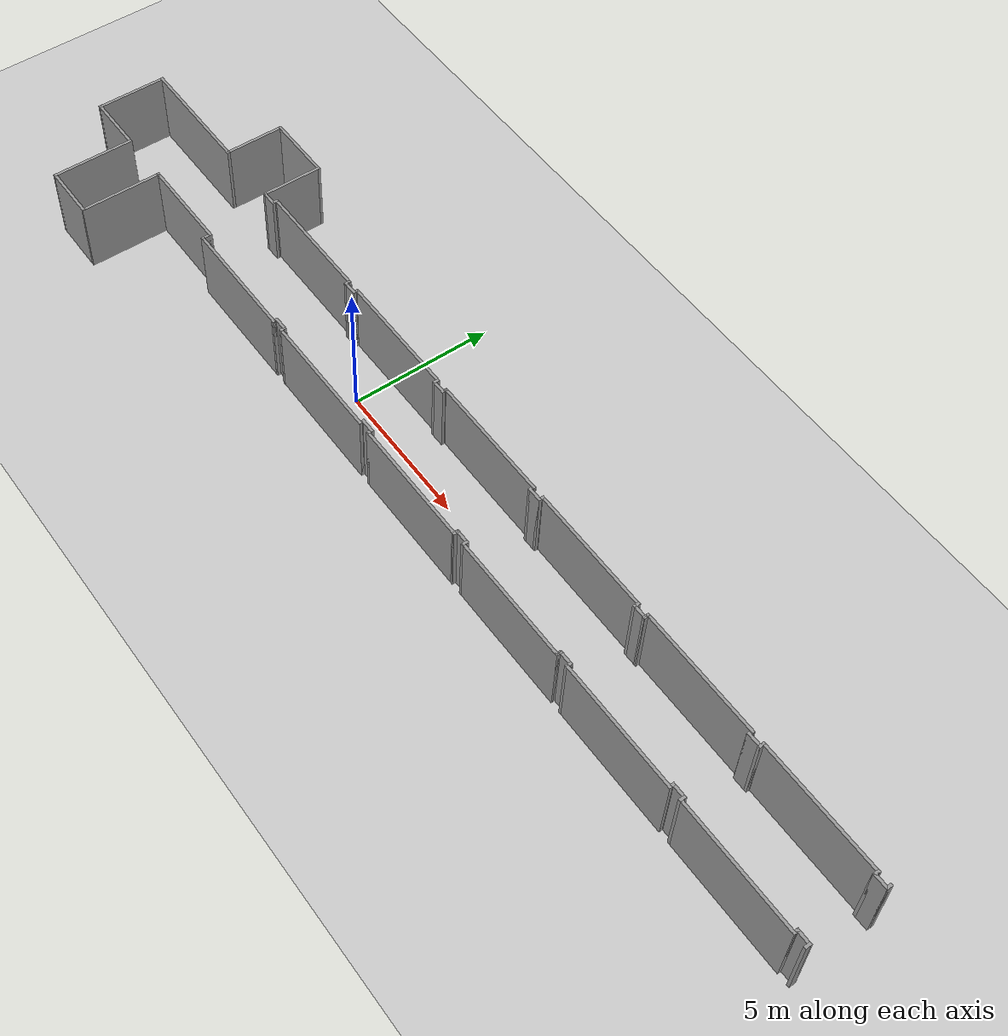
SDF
<?xml version="1.0" ?>
<sdf version="1.5">
 <world name="default">

    <scene>
      <ambient>0.4 0.4 0.4 1</ambient>
      <background>0.7 0.7 0.7 1</background>
      <shadows>1</shadows>
    </scene>

    <!-- A global light source -->
    <include>
      <uri>model://sun</uri>
    </include>
    <!-- A ground plane -->
    <include>
      <uri>model://ground_plane</uri>
    </include>

    <include>
      <uri>model://EE_Build</uri>
      <pose frame=''>0 0 0 0 0 3.14</pose>
    </include>

    <physics type="ode">
      <real_time_update_rate>1000.0</real_time_update_rate>
      <max_step_size>0.001</max_step_size>
      <real_time_factor>1</real_time_factor>
      <ode>
        <solver>
          <type>quick</type>
          <iters>150</iters>
          <precon_iters>0</precon_iters>
          <sor>1.400000</sor>
          <use_dynamic_moi_rescaling>1</use_dynamic_moi_rescaling>
        </solver>
        <constraints>
          <cfm>0.00001</cfm>
          <erp>0.2</erp>
          <contact_max_correcting_vel>2000.000000</contact_max_correcting_vel>
          <contact_surface_layer>0.01000</contact_surface_layer>
        </constraints>
      </ode>
    </physics>

 </world>
</sdf>

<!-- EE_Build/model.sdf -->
<sdf version='1.6'>
  <model name='EE_Build'>
    <model name='EE_Build'>
      <pose frame=''>5.45213 0.31107 0 0 -0 0</pose>
      <link name='Wall_246'>
        <collision name='Wall_246_Collision'>
          <geometry>
            <box>
              <size>4.32 0.1 2.6</size>
            </box>
          </geometry>
          <pose frame=''>0 0 1.3 0 -0 0</pose>
        </collision>
        <visual name='Wall_246_Visual'>
          <pose frame=''>0 0 1.3 0 -0 0</pose>
          <geometry>
            <box>
              <size>4.32 0.1 2.6</size>
            </box>
          </geometry>
          <material>
            <script>
              <uri>file://media/materials/scripts/gazebo.material</uri>
              <name>Gazebo/Grey</name>
            </script>
            <ambient>1 1 1 1</ambient>
          </material>
        </visual>
        <pose frame=''>-0.960228 1.09491 0 0 -0 0</pose>
      </link>
      <link name='Wall_248'>
        <collision name='Wall_248_Collision'>
          <geometry>
            <box>
              <size>0.37 0.1 2.6</size>
            </box>
          </geometry>
          <pose frame=''>0 0 1.3 0 -0 0</pose>
        </collision>
        <visual name='Wall_248_Visual'>
          <pose frame=''>0 0 1.3 0 -0 0</pose>
          <geometry>
            <box>
              <size>0.37 0.1 2.6</size>
            </box>
          </geometry>
          <material>
            <script>
              <uri>file://media/materials/scripts/gazebo.material</uri>
              <name>Gazebo/Grey</name>
            </script>
            <ambient>1 1 1 1</ambient>
          </material>
        </visual>
        <pose frame=''>1.14977 0.959909 0 0 0 -1.5708</pose>
      </link>
      <link name='Wall_250'>
        <collision name='Wall_250_Collision'>
          <geometry>
            <box>
              <size>3.38 0.1 2.6</size>
            </box>
          </geometry>
          <pose frame=''>0 0 1.3 0 -0 0</pose>
        </collision>
        <visual name='Wall_250_Visual'>
          <pose frame=''>0 0 1.3 0 -0 0</pose>
          <geometry>
            <box>
              <size>3.38 0.1 2.6</size>
            </box>
          </geometry>
          <material>
            <script>
              <uri>file://media/materials/scripts/gazebo.material</uri>
              <name>Gazebo/Grey</name>
            </script>
            <ambient>1 1 1 1</ambient>
          </material>
        </visual>
        <pose frame=''>2.78977 0.824909 0 0 -0 0</pose>
      </link>
      <link name='Wall_253'>
        <collision name='Wall_253_Collision'>
          <geometry>
            <box>
              <size>0.22 0.1 2.6</size>
            </box>
          </geometry>
          <pose frame=''>0 0 1.3 0 -0 0</pose>
        </collision>
        <visual name='Wall_253_Visual'>
          <pose frame=''>0 0 1.3 0 -0 0</pose>
          <geometry>
            <box>
              <size>0.22 0.1 2.6</size>
            </box>
          </geometry>
          <material>
            <script>
              <uri>file://media/materials/scripts/gazebo.material</uri>
              <name>Gazebo/Grey</name>
            </script>
            <ambient>1 1 1 1</ambient>
          </material>
        </visual>
        <pose frame=''>-3.07023 1.03491 0 0 0 -1.5708</pose>
      </link>
      <link name='Wall_262'>
        <collision name='Wall_262_Collision'>
          <geometry>
            <box>
              <size>0.54 0.1 2.6</size>
            </box>
          </geometry>
          <pose frame=''>0 0 1.3 0 -0 0</pose>
        </collision>
        <visual name='Wall_262_Visual'>
          <pose frame=''>0 0 1.3 0 -0 0</pose>
          <geometry>
            <box>
              <size>0.54 0.1 2.6</size>
            </box>
          </geometry>
          <material>
            <script>
              <uri>file://media/materials/scripts/gazebo.material</uri>
              <name>Gazebo/Grey</name>
            </script>
            <ambient>1 1 1 1</ambient>
          </material>
        </visual>
        <pose frame=''>-3.29023 0.974909 0 0 -0 3.14159</pose>
      </link>
      <link name='Wall_270'>
        <collision name='Wall_270_Collision'>
          <geometry>
            <box>
              <size>0.22 0.1 2.6</size>
            </box>
          </geometry>
          <pose frame=''>0 0 1.3 0 -0 0</pose>
        </collision>
        <visual name='Wall_270_Visual'>
          <pose frame=''>0 0 1.3 0 -0 0</pose>
          <geometry>
            <box>
              <size>0.22 0.1 2.6</size>
            </box>
          </geometry>
          <material>
            <script>
              <uri>file://media/materials/scripts/gazebo.material</uri>
              <name>Gazebo/Grey</name>
            </script>
            <ambient>1 1 1 1</ambient>
          </material>
        </visual>
        <pose frame=''>-3.51023 1.03491 0 0 -0 1.5708</pose>
      </link>
      <link name='Wall_272'>
        <collision name='Wall_272_Collision'>
          <geometry>
            <box>
              <size>4.46 0.1 2.6</size>
            </box>
          </geometry>
          <pose frame=''>0 0 1.3 0 -0 0</pose>
        </collision>
        <visual name='Wall_272_Visual'>
          <pose frame=''>0 0 1.3 0 -0 0</pose>
          <geometry>
            <box>
              <size>4.46 0.1 2.6</size>
            </box>
          </geometry>
          <material>
            <script>
              <uri>file://media/materials/scripts/gazebo.material</uri>
              <name>Gazebo/Grey</name>
            </script>
            <ambient>1 1 1 1</ambient>
          </material>
        </visual>
        <pose frame=''>-5.69023 1.09491 0 0 -0 3.14159</pose>
      </link>
      <link name='Wall_274'>
        <collision name='Wall_274_Collision'>
          <geometry>
            <box>
              <size>0.22 0.1 2.6</size>
            </box>
          </geometry>
          <pose frame=''>0 0 1.3 0 -0 0</pose>
        </collision>
        <visual name='Wall_274_Visual'>
          <pose frame=''>0 0 1.3 0 -0 0</pose>
          <geometry>
            <box>
              <size>0.22 0.1 2.6</size>
            </box>
          </geometry>
          <material>
            <script>
              <uri>file://media/materials/scripts/gazebo.material</uri>
              <name>Gazebo/Grey</name>
            </script>
            <ambient>1 1 1 1</ambient>
          </material>
        </visual>
        <pose frame=''>-7.87023 1.03491 0 0 0 -1.5708</pose>
      </link>
      <link name='Wall_276'>
        <collision name='Wall_276_Collision'>
          <geometry>
            <box>
              <size>2.9 0.1 2.6</size>
            </box>
          </geometry>
          <pose frame=''>0 0 1.3 0 -0 0</pose>
        </collision>
        <visual name='Wall_276_Visual'>
          <pose frame=''>0 0 1.3 0 -0 0</pose>
          <geometry>
            <box>
              <size>2.9 0.1 2.6</size>
            </box>
          </geometry>
          <material>
            <script>
              <uri>file://media/materials/scripts/gazebo.material</uri>
              <name>Gazebo/Grey</name>
            </script>
            <ambient>1 1 1 1</ambient>
          </material>
        </visual>
        <pose frame=''>4.42977 2.22491 0 0 -0 1.5708</pose>
      </link>
      <link name='Wall_278'>
        <collision name='Wall_278_Collision'>
          <geometry>
            <box>
              <size>1.98 0.1 2.6</size>
            </box>
          </geometry>
          <pose frame=''>0 0 1.3 0 -0 0</pose>
        </collision>
        <visual name='Wall_278_Visual'>
          <pose frame=''>0 0 1.3 0 -0 0</pose>
          <geometry>
            <box>
              <size>1.98 0.1 2.6</size>
            </box>
          </geometry>
          <material>
            <script>
              <uri>file://media/materials/scripts/gazebo.material</uri>
              <name>Gazebo/Grey</name>
            </script>
            <ambient>1 1 1 1</ambient>
          </material>
        </visual>
        <pose frame=''>5.36977 3.62491 0 0 -0 0</pose>
      </link>
      <link name='Wall_280'>
        <collision name='Wall_280_Collision'>
          <geometry>
            <box>
              <size>2.9 0.1 2.6</size>
            </box>
          </geometry>
          <pose frame=''>0 0 1.3 0 -0 0</pose>
        </collision>
        <visual name='Wall_280_Visual'>
          <pose frame=''>0 0 1.3 0 -0 0</pose>
          <geometry>
            <box>
              <size>2.9 0.1 2.6</size>
            </box>
          </geometry>
          <material>
            <script>
              <uri>file://media/materials/scripts/gazebo.material</uri>
              <name>Gazebo/Grey</name>
            </script>
            <ambient>1 1 1 1</ambient>
          </material>
        </visual>
        <pose frame=''>6.30977 2.22491 0 0 0 -1.5708</pose>
      </link>
      <link name='Wall_282'>
        <collision name='Wall_282_Collision'>
          <geometry>
            <box>
              <size>2.1 0.1 2.6</size>
            </box>
          </geometry>
          <pose frame=''>0 0 1.3 0 -0 0</pose>
        </collision>
        <visual name='Wall_282_Visual'>
          <pose frame=''>0 0 1.3 0 -0 0</pose>
          <geometry>
            <box>
              <size>2.1 0.1 2.6</size>
            </box>
          </geometry>
          <material>
            <script>
              <uri>file://media/materials/scripts/gazebo.material</uri>
              <name>Gazebo/Grey</name>
            </script>
            <ambient>1 1 1 1</ambient>
          </material>
        </visual>
        <pose frame=''>7.31 0.825 0 0 -0 9.1e-05</pose>
      </link>
      <link name='Wall_284'>
        <collision name='Wall_284_Collision'>
          <geometry>
            <box>
              <size>2.5 0.1 2.6</size>
            </box>
          </geometry>
          <pose frame=''>0 0 1.3 0 -0 0</pose>
        </collision>
        <visual name='Wall_284_Visual'>
          <pose frame=''>0 0 1.3 0 -0 0</pose>
          <geometry>
            <box>
              <size>2.5 0.1 2.6</size>
            </box>
          </geometry>
          <material>
            <script>
              <uri>file://media/materials/scripts/gazebo.material</uri>
              <name>Gazebo/Grey</name>
            </script>
            <ambient>1 1 1 1</ambient>
          </material>
        </visual>
        <pose frame=''>8.31023 -0.374909 0 0 0 -1.5708</pose>
      </link>
      <link name='Wall_286'>
        <collision name='Wall_286_Collision'>
          <geometry>
            <box>
              <size>4.42 0.1 2.6</size>
            </box>
          </geometry>
          <pose frame=''>0 0 1.3 0 -0 0</pose>
        </collision>
        <visual name='Wall_286_Visual'>
          <pose frame=''>0 0 1.3 0 -0 0</pose>
          <geometry>
            <box>
              <size>4.42 0.1 2.6</size>
            </box>
          </geometry>
          <material>
            <script>
              <uri>file://media/materials/scripts/gazebo.material</uri>
              <name>Gazebo/Grey</name>
            </script>
            <ambient>1 1 1 1</ambient>
          </material>
        </visual>
        <pose frame=''>6.15023 -1.57491 0 0 -0 3.14159</pose>
      </link>
      <link name='Wall_288'>
        <collision name='Wall_288_Collision'>
          <geometry>
            <box>
              <size>2.15 0.1 2.6</size>
            </box>
          </geometry>
          <pose frame=''>0 0 1.3 0 -0 0</pose>
        </collision>
        <visual name='Wall_288_Visual'>
          <pose frame=''>0 0 1.3 0 -0 0</pose>
          <geometry>
            <box>
              <size>2.15 0.1 2.6</size>
            </box>
          </geometry>
          <material>
            <script>
              <uri>file://media/materials/scripts/gazebo.material</uri>
              <name>Gazebo/Grey</name>
            </script>
            <ambient>1 1 1 1</ambient>
          </material>
        </visual>
        <pose frame=''>3.99023 -2.59991 0 0 0 -1.5708</pose>
      </link>
      <link name='Wall_290'>
        <collision name='Wall_290_Collision'>
          <geometry>
            <box>
              <size>2.42 0.1 2.6</size>
            </box>
          </geometry>
          <pose frame=''>0 0 1.3 0 -0 0</pose>
        </collision>
        <visual name='Wall_290_Visual'>
          <pose frame=''>0 0 1.3 0 -0 0</pose>
          <geometry>
            <box>
              <size>2.42 0.1 2.6</size>
            </box>
          </geometry>
          <material>
            <script>
              <uri>file://media/materials/scripts/gazebo.material</uri>
              <name>Gazebo/Grey</name>
            </script>
            <ambient>1 1 1 1</ambient>
          </material>
        </visual>
        <pose frame=''>2.83023 -3.62491 0 0 -0 3.14159</pose>
      </link>
      <link name='Wall_294'>
        <collision name='Wall_294_Collision'>
          <geometry>
            <box>
              <size>2.15 0.1 2.6</size>
            </box>
          </geometry>
          <pose frame=''>0 0 1.3 0 -0 0</pose>
        </collision>
        <visual name='Wall_294_Visual'>
          <pose frame=''>0 0 1.3 0 -0 0</pose>
          <geometry>
            <box>
              <size>2.15 0.1 2.6</size>
            </box>
          </geometry>
          <material>
            <script>
              <uri>file://media/materials/scripts/gazebo.material</uri>
              <name>Gazebo/Grey</name>
            </script>
            <ambient>1 1 1 1</ambient>
          </material>
        </visual>
        <pose frame=''>1.67023 -2.59991 0 0 -0 1.5708</pose>
      </link>
      <link name='Wall_296'>
        <collision name='Wall_296_Collision'>
          <geometry>
            <box>
              <size>0.58 0.1 2.6</size>
            </box>
          </geometry>
          <pose frame=''>0 0 1.3 0 -0 0</pose>
        </collision>
        <visual name='Wall_296_Visual'>
          <pose frame=''>0 0 1.3 0 -0 0</pose>
          <geometry>
            <box>
              <size>0.58 0.1 2.6</size>
            </box>
          </geometry>
          <material>
            <script>
              <uri>file://media/materials/scripts/gazebo.material</uri>
              <name>Gazebo/Grey</name>
            </script>
            <ambient>1 1 1 1</ambient>
          </material>
        </visual>
        <pose frame=''>1.43023 -1.57491 0 0 -0 3.14159</pose>
      </link>
      <link name='Wall_298'>
        <collision name='Wall_298_Collision'>
          <geometry>
            <box>
              <size>0.24 0.1 2.6</size>
            </box>
          </geometry>
          <pose frame=''>0 0 1.3 0 -0 0</pose>
        </collision>
        <visual name='Wall_298_Visual'>
          <pose frame=''>0 0 1.3 0 -0 0</pose>
          <geometry>
            <box>
              <size>0.24 0.1 2.6</size>
            </box>
          </geometry>
          <material>
            <script>
              <uri>file://media/materials/scripts/gazebo.material</uri>
              <name>Gazebo/Grey</name>
            </script>
            <ambient>1 1 1 1</ambient>
          </material>
        </visual>
        <pose frame=''>1.19023 -1.64491 0 0 0 -1.5708</pose>
      </link>
      <link name='Wall_300'>
        <collision name='Wall_300_Collision'>
          <geometry>
            <box>
              <size>4.36 0.1 2.6</size>
            </box>
          </geometry>
          <pose frame=''>0 0 1.3 0 -0 0</pose>
        </collision>
        <visual name='Wall_300_Visual'>
          <pose frame=''>0 0 1.3 0 -0 0</pose>
          <geometry>
            <box>
              <size>4.36 0.1 2.6</size>
            </box>
          </geometry>
          <material>
            <script>
              <uri>file://media/materials/scripts/gazebo.material</uri>
              <name>Gazebo/Grey</name>
            </script>
            <ambient>1 1 1 1</ambient>
          </material>
        </visual>
        <pose frame=''>-0.939771 -1.71491 0 0 -0 3.14159</pose>
      </link>
      <link name='Wall_302'>
        <collision name='Wall_302_Collision'>
          <geometry>
            <box>
              <size>0.22 0.1 2.6</size>
            </box>
          </geometry>
          <pose frame=''>0 0 1.3 0 -0 0</pose>
        </collision>
        <visual name='Wall_302_Visual'>
          <pose frame=''>0 0 1.3 0 -0 0</pose>
          <geometry>
            <box>
              <size>0.22 0.1 2.6</size>
            </box>
          </geometry>
          <material>
            <script>
              <uri>file://media/materials/scripts/gazebo.material</uri>
              <name>Gazebo/Grey</name>
            </script>
            <ambient>1 1 1 1</ambient>
          </material>
        </visual>
        <pose frame=''>-3.06977 -1.65491 0 0 -0 1.5708</pose>
      </link>
      <link name='Wall_308'>
        <collision name='Wall_308_Collision'>
          <geometry>
            <box>
              <size>0.54 0.1 2.6</size>
            </box>
          </geometry>
          <pose frame=''>0 0 1.3 0 -0 0</pose>
        </collision>
        <visual name='Wall_308_Visual'>
          <pose frame=''>0 0 1.3 0 -0 0</pose>
          <geometry>
            <box>
              <size>0.54 0.1 2.6</size>
            </box>
          </geometry>
          <material>
            <script>
              <uri>file://media/materials/scripts/gazebo.material</uri>
              <name>Gazebo/Grey</name>
            </script>
            <ambient>1 1 1 1</ambient>
          </material>
        </visual>
        <pose frame=''>-3.28977 -1.59491 0 0 -0 3.14159</pose>
      </link>
      <link name='Wall_310'>
        <collision name='Wall_310_Collision'>
          <geometry>
            <box>
              <size>0.22 0.1 2.6</size>
            </box>
          </geometry>
          <pose frame=''>0 0 1.3 0 -0 0</pose>
        </collision>
        <visual name='Wall_310_Visual'>
          <pose frame=''>0 0 1.3 0 -0 0</pose>
          <geometry>
            <box>
              <size>0.22 0.1 2.6</size>
            </box>
          </geometry>
          <material>
            <script>
              <uri>file://media/materials/scripts/gazebo.material</uri>
              <name>Gazebo/Grey</name>
            </script>
            <ambient>1 1 1 1</ambient>
          </material>
        </visual>
        <pose frame=''>-3.50977 -1.65491 0 0 0 -1.5708</pose>
      </link>
      <link name='Wall_312'>
        <collision name='Wall_312_Collision'>
          <geometry>
            <box>
              <size>4.46 0.1 2.6</size>
            </box>
          </geometry>
          <pose frame=''>0 0 1.3 0 -0 0</pose>
        </collision>
        <visual name='Wall_312_Visual'>
          <pose frame=''>0 0 1.3 0 -0 0</pose>
          <geometry>
            <box>
              <size>4.46 0.1 2.6</size>
            </box>
          </geometry>
          <material>
            <script>
              <uri>file://media/materials/scripts/gazebo.material</uri>
              <name>Gazebo/Grey</name>
            </script>
            <ambient>1 1 1 1</ambient>
          </material>
        </visual>
        <pose frame=''>-5.68977 -1.71491 0 0 -0 3.14159</pose>
      </link>
      <link name='Wall_314'>
        <collision name='Wall_314_Collision'>
          <geometry>
            <box>
              <size>0.22 0.1 2.6</size>
            </box>
          </geometry>
          <pose frame=''>0 0 1.3 0 -0 0</pose>
        </collision>
        <visual name='Wall_314_Visual'>
          <pose frame=''>0 0 1.3 0 -0 0</pose>
          <geometry>
            <box>
              <size>0.22 0.1 2.6</size>
            </box>
          </geometry>
          <material>
            <script>
              <uri>file://media/materials/scripts/gazebo.material</uri>
              <name>Gazebo/Grey</name>
            </script>
            <ambient>1 1 1 1</ambient>
          </material>
        </visual>
        <pose frame=''>-7.86977 -1.65491 0 0 -0 1.5708</pose>
      </link>
      <link name='Wall_320'>
        <collision name='Wall_320_Collision'>
          <geometry>
            <box>
              <size>0.54 0.1 2.6</size>
            </box>
          </geometry>
          <pose frame=''>0 0 1.3 0 -0 0</pose>
        </collision>
        <visual name='Wall_320_Visual'>
          <pose frame=''>0 0 1.3 0 -0 0</pose>
          <geometry>
            <box>
              <size>0.54 0.1 2.6</size>
            </box>
          </geometry>
          <material>
            <script>
              <uri>file://media/materials/scripts/gazebo.material</uri>
              <name>Gazebo/Grey</name>
            </script>
            <ambient>1 1 1 1</ambient>
          </material>
        </visual>
        <pose frame=''>-8.09023 0.974909 0 0 -0 3.14159</pose>
      </link>
      <link name='Wall_328'>
        <collision name='Wall_328_Collision'>
          <geometry>
            <box>
              <size>0.54 0.1 2.6</size>
            </box>
          </geometry>
          <pose frame=''>0 0 1.3 0 -0 0</pose>
        </collision>
        <visual name='Wall_328_Visual'>
          <pose frame=''>0 0 1.3 0 -0 0</pose>
          <geometry>
            <box>
              <size>0.54 0.1 2.6</size>
            </box>
          </geometry>
          <material>
            <script>
              <uri>file://media/materials/scripts/gazebo.material</uri>
              <name>Gazebo/Grey</name>
            </script>
            <ambient>1 1 1 1</ambient>
          </material>
        </visual>
        <pose frame=''>-8.08977 -1.59491 0 0 -0 3.14159</pose>
      </link>
      <static>1</static>
    </model>
    <model name='test2'>
      <pose frame=''>-12.4573 1.34694 0 0 -0 0</pose>
      <link name='Wall_341'>
        <collision name='Wall_341_Collision'>
          <geometry>
            <box>
              <size>4.46 0.1 2.6</size>
            </box>
          </geometry>
          <pose frame=''>0 0 1.3 0 -0 0</pose>
        </collision>
        <visual name='Wall_341_Visual'>
          <pose frame=''>0 0 1.3 0 -0 0</pose>
          <geometry>
            <box>
              <size>4.46 0.1 2.6</size>
            </box>
          </geometry>
          <material>
            <script>
              <uri>file://media/materials/scripts/gazebo.material</uri>
              <name>Gazebo/Grey</name>
            </script>
            <ambient>1 1 1 1</ambient>
          </material>
        </visual>
        <pose frame=''>2.62 0.06 0 0 -0 3.14159</pose>
      </link>
      <link name='Wall_345'>
        <collision name='Wall_345_Collision'>
          <geometry>
            <box>
              <size>0.22 0.1 2.6</size>
            </box>
          </geometry>
          <pose frame=''>0 0 1.3 0 -0 0</pose>
        </collision>
        <visual name='Wall_345_Visual'>
          <pose frame=''>0 0 1.3 0 -0 0</pose>
          <geometry>
            <box>
              <size>0.22 0.1 2.6</size>
            </box>
          </geometry>
          <material>
            <script>
              <uri>file://media/materials/scripts/gazebo.material</uri>
              <name>Gazebo/Grey</name>
            </script>
            <ambient>1 1 1 1</ambient>
          </material>
        </visual>
        <pose frame=''>4.8 0 0 0 0 -1.5708</pose>
      </link>
      <link name='Wall_347'>
        <collision name='Wall_347_Collision'>
          <geometry>
            <box>
              <size>0.22 0.1 2.6</size>
            </box>
          </geometry>
          <pose frame=''>0 0 1.3 0 -0 0</pose>
        </collision>
        <visual name='Wall_347_Visual'>
          <pose frame=''>0 0 1.3 0 -0 0</pose>
          <geometry>
            <box>
              <size>0.22 0.1 2.6</size>
            </box>
          </geometry>
          <material>
            <script>
              <uri>file://media/materials/scripts/gazebo.material</uri>
              <name>Gazebo/Grey</name>
            </script>
            <ambient>1 1 1 1</ambient>
          </material>
        </visual>
        <pose frame=''>0.44 0 0 0 0 -1.5708</pose>
      </link>
      <link name='Wall_361'>
        <collision name='Wall_361_Collision'>
          <geometry>
            <box>
              <size>0.54 0.1 2.6</size>
            </box>
          </geometry>
          <pose frame=''>0 0 1.3 0 -0 0</pose>
        </collision>
        <visual name='Wall_361_Visual'>
          <pose frame=''>0 0 1.3 0 -0 0</pose>
          <geometry>
            <box>
              <size>0.54 0.1 2.6</size>
            </box>
          </geometry>
          <material>
            <script>
              <uri>file://media/materials/scripts/gazebo.material</uri>
              <name>Gazebo/Grey</name>
            </script>
            <ambient>1 1 1 1</ambient>
          </material>
        </visual>
        <pose frame=''>0.22 -0.06 0 0 -0 3.14159</pose>
      </link>
      <link name='Wall_363'>
        <collision name='Wall_363_Collision'>
          <geometry>
            <box>
              <size>0.22 0.1 2.6</size>
            </box>
          </geometry>
          <pose frame=''>0 0 1.3 0 -0 0</pose>
        </collision>
        <visual name='Wall_363_Visual'>
          <pose frame=''>0 0 1.3 0 -0 0</pose>
          <geometry>
            <box>
              <size>0.22 0.1 2.6</size>
            </box>
          </geometry>
          <material>
            <script>
              <uri>file://media/materials/scripts/gazebo.material</uri>
              <name>Gazebo/Grey</name>
            </script>
            <ambient>1 1 1 1</ambient>
          </material>
        </visual>
        <pose frame=''>0 0 0 0 -0 1.5708</pose>
      </link>
      <link name='Wall_366'>
        <collision name='Wall_366_Collision'>
          <geometry>
            <box>
              <size>4.46 0.1 2.6</size>
            </box>
          </geometry>
          <pose frame=''>0 0 1.3 0 -0 0</pose>
        </collision>
        <visual name='Wall_366_Visual'>
          <pose frame=''>0 0 1.3 0 -0 0</pose>
          <geometry>
            <box>
              <size>4.46 0.1 2.6</size>
            </box>
          </geometry>
          <material>
            <script>
              <uri>file://media/materials/scripts/gazebo.material</uri>
              <name>Gazebo/Grey</name>
            </script>
            <ambient>1 1 1 1</ambient>
          </material>
        </visual>
        <pose frame=''>-2.18 0.06 0 0 -0 3.14159</pose>
      </link>
      <link name='Wall_368'>
        <collision name='Wall_368_Collision'>
          <geometry>
            <box>
              <size>0.22 0.1 2.6</size>
            </box>
          </geometry>
          <pose frame=''>0 0 1.3 0 -0 0</pose>
        </collision>
        <visual name='Wall_368_Visual'>
          <pose frame=''>0 0 1.3 0 -0 0</pose>
          <geometry>
            <box>
              <size>0.22 0.1 2.6</size>
            </box>
          </geometry>
          <material>
            <script>
              <uri>file://media/materials/scripts/gazebo.material</uri>
              <name>Gazebo/Grey</name>
            </script>
            <ambient>1 1 1 1</ambient>
          </material>
        </visual>
        <pose frame=''>-4.36 0 0 0 0 -1.5708</pose>
      </link>
      <link name='Wall_370'>
        <collision name='Wall_370_Collision'>
          <geometry>
            <box>
              <size>0.54 0.1 2.6</size>
            </box>
          </geometry>
          <pose frame=''>0 0 1.3 0 -0 0</pose>
        </collision>
        <visual name='Wall_370_Visual'>
          <pose frame=''>0 0 1.3 0 -0 0</pose>
          <geometry>
            <box>
              <size>0.54 0.1 2.6</size>
            </box>
          </geometry>
          <material>
            <script>
              <uri>file://media/materials/scripts/gazebo.material</uri>
              <name>Gazebo/Grey</name>
            </script>
            <ambient>1 1 1 1</ambient>
          </material>
        </visual>
        <pose frame=''>-4.58 -0.06 0 0 -0 3.14159</pose>
      </link>
      <link name='Wall_372'>
        <collision name='Wall_372_Collision'>
          <geometry>
            <box>
              <size>0.22 0.1 2.6</size>
            </box>
          </geometry>
          <pose frame=''>0 0 1.3 0 -0 0</pose>
        </collision>
        <visual name='Wall_372_Visual'>
          <pose frame=''>0 0 1.3 0 -0 0</pose>
          <geometry>
            <box>
              <size>0.22 0.1 2.6</size>
            </box>
          </geometry>
          <material>
            <script>
              <uri>file://media/materials/scripts/gazebo.material</uri>
              <name>Gazebo/Grey</name>
            </script>
            <ambient>1 1 1 1</ambient>
          </material>
        </visual>
        <pose frame=''>-4.8 0 0 0 -0 1.5708</pose>
      </link>
      <link name='Wall_375'>
        <collision name='Wall_375_Collision'>
          <geometry>
            <box>
              <size>4.46 0.1 2.6</size>
            </box>
          </geometry>
          <pose frame=''>0 0 1.3 0 -0 0</pose>
        </collision>
        <visual name='Wall_375_Visual'>
          <pose frame=''>0 0 1.3 0 -0 0</pose>
          <geometry>
            <box>
              <size>4.46 0.1 2.6</size>
            </box>
          </geometry>
          <material>
            <script>
              <uri>file://media/materials/scripts/gazebo.material</uri>
              <name>Gazebo/Grey</name>
            </script>
            <ambient>1 1 1 1</ambient>
          </material>
        </visual>
        <pose frame=''>-6.98 0.06 0 0 -0 3.14159</pose>
      </link>
      <link name='Wall_377'>
        <collision name='Wall_377_Collision'>
          <geometry>
            <box>
              <size>0.22 0.1 2.6</size>
            </box>
          </geometry>
          <pose frame=''>0 0 1.3 0 -0 0</pose>
        </collision>
        <visual name='Wall_377_Visual'>
          <pose frame=''>0 0 1.3 0 -0 0</pose>
          <geometry>
            <box>
              <size>0.22 0.1 2.6</size>
            </box>
          </geometry>
          <material>
            <script>
              <uri>file://media/materials/scripts/gazebo.material</uri>
              <name>Gazebo/Grey</name>
            </script>
            <ambient>1 1 1 1</ambient>
          </material>
        </visual>
        <pose frame=''>-9.16 0 0 0 0 -1.5708</pose>
      </link>
      <link name='Wall_380'>
        <collision name='Wall_380_Collision'>
          <geometry>
            <box>
              <size>0.54 0.1 2.6</size>
            </box>
          </geometry>
          <pose frame=''>0 0 1.3 0 -0 0</pose>
        </collision>
        <visual name='Wall_380_Visual'>
          <pose frame=''>0 0 1.3 0 -0 0</pose>
          <geometry>
            <box>
              <size>0.54 0.1 2.6</size>
            </box>
          </geometry>
          <material>
            <script>
              <uri>file://media/materials/scripts/gazebo.material</uri>
              <name>Gazebo/Grey</name>
            </script>
            <ambient>1 1 1 1</ambient>
          </material>
        </visual>
        <pose frame=''>-9.38 -0.06 0 0 -0 3.14159</pose>
      </link>
      <link name='Wall_383'>
        <collision name='Wall_383_Collision'>
          <geometry>
            <box>
              <size>0.22 0.1 2.6</size>
            </box>
          </geometry>
          <pose frame=''>0 0 1.3 0 -0 0</pose>
        </collision>
        <visual name='Wall_383_Visual'>
          <pose frame=''>0 0 1.3 0 -0 0</pose>
          <geometry>
            <box>
              <size>0.22 0.1 2.6</size>
            </box>
          </geometry>
          <material>
            <script>
              <uri>file://media/materials/scripts/gazebo.material</uri>
              <name>Gazebo/Grey</name>
            </script>
            <ambient>1 1 1 1</ambient>
          </material>
        </visual>
        <pose frame=''>-9.6 0 0 0 -0 1.5708</pose>
      </link>
      <link name='Wall_388'>
        <collision name='Wall_388_Collision'>
          <geometry>
            <box>
              <size>0.54 0.1 2.6</size>
            </box>
          </geometry>
          <pose frame=''>0 0 1.3 0 -0 0</pose>
        </collision>
        <visual name='Wall_388_Visual'>
          <pose frame=''>0 0 1.3 0 -0 0</pose>
          <geometry>
            <box>
              <size>0.54 0.1 2.6</size>
            </box>
          </geometry>
          <material>
            <script>
              <uri>file://media/materials/scripts/gazebo.material</uri>
              <name>Gazebo/Grey</name>
            </script>
            <ambient>1 1 1 1</ambient>
          </material>
        </visual>
        <pose frame=''>5.02 -0.06 0 0 -0 0</pose>
      </link>
      <link name='Wall_390'>
        <collision name='Wall_390_Collision'>
          <geometry>
            <box>
              <size>0.22 0.1 2.6</size>
            </box>
          </geometry>
          <pose frame=''>0 0 1.3 0 -0 0</pose>
        </collision>
        <visual name='Wall_390_Visual'>
          <pose frame=''>0 0 1.3 0 -0 0</pose>
          <geometry>
            <box>
              <size>0.22 0.1 2.6</size>
            </box>
          </geometry>
          <material>
            <script>
              <uri>file://media/materials/scripts/gazebo.material</uri>
              <name>Gazebo/Grey</name>
            </script>
            <ambient>1 1 1 1</ambient>
          </material>
        </visual>
        <pose frame=''>5.24 0 0 0 -0 1.5708</pose>
      </link>
      <link name='Wall_393'>
        <collision name='Wall_393_Collision'>
          <geometry>
            <box>
              <size>4.46 0.1 2.6</size>
            </box>
          </geometry>
          <pose frame=''>0 0 1.3 0 -0 0</pose>
        </collision>
        <visual name='Wall_393_Visual'>
          <pose frame=''>0 0 1.3 0 -0 0</pose>
          <geometry>
            <box>
              <size>4.46 0.1 2.6</size>
            </box>
          </geometry>
          <material>
            <script>
              <uri>file://media/materials/scripts/gazebo.material</uri>
              <name>Gazebo/Grey</name>
            </script>
            <ambient>1 1 1 1</ambient>
          </material>
        </visual>
        <pose frame=''>7.42 0.06 0 0 -0 0</pose>
      </link>
      <link name='Wall_395'>
        <collision name='Wall_395_Collision'>
          <geometry>
            <box>
              <size>0.22 0.1 2.6</size>
            </box>
          </geometry>
          <pose frame=''>0 0 1.3 0 -0 0</pose>
        </collision>
        <visual name='Wall_395_Visual'>
          <pose frame=''>0 0 1.3 0 -0 0</pose>
          <geometry>
            <box>
              <size>0.22 0.1 2.6</size>
            </box>
          </geometry>
          <material>
            <script>
              <uri>file://media/materials/scripts/gazebo.material</uri>
              <name>Gazebo/Grey</name>
            </script>
            <ambient>1 1 1 1</ambient>
          </material>
        </visual>
        <pose frame=''>9.6 0 0 0 0 -1.5708</pose>
      </link>
      <static>1</static>
    </model>
    <model name='test3'>
      <pose frame=''>-12.4572 -1.34482 0 0 -0 0</pose>
      <link name='Wall_366'>
        <collision name='Wall_366_Collision'>
          <geometry>
            <box>
              <size>4.46 0.1 2.6</size>
            </box>
          </geometry>
          <pose frame=''>0 0 1.3 0 -0 0</pose>
        </collision>
        <visual name='Wall_366_Visual'>
          <pose frame=''>0 0 1.3 0 -0 0</pose>
          <geometry>
            <box>
              <size>4.46 0.1 2.6</size>
            </box>
          </geometry>
          <material>
            <script>
              <uri>file://media/materials/scripts/gazebo.material</uri>
              <name>Gazebo/Grey</name>
            </script>
            <ambient>1 1 1 1</ambient>
          </material>
        </visual>
        <pose frame=''>-2.18 -0.06 0 0 -0 3.14159</pose>
      </link>
      <link name='Wall_375'>
        <collision name='Wall_375_Collision'>
          <geometry>
            <box>
              <size>4.46 0.1 2.6</size>
            </box>
          </geometry>
          <pose frame=''>0 0 1.3 0 -0 0</pose>
        </collision>
        <visual name='Wall_375_Visual'>
          <pose frame=''>0 0 1.3 0 -0 0</pose>
          <geometry>
            <box>
              <size>4.46 0.1 2.6</size>
            </box>
          </geometry>
          <material>
            <script>
              <uri>file://media/materials/scripts/gazebo.material</uri>
              <name>Gazebo/Grey</name>
            </script>
            <ambient>1 1 1 1</ambient>
          </material>
        </visual>
        <pose frame=''>-6.98 -0.06 0 0 -0 3.14159</pose>
      </link>
      <link name='Wall_393'>
        <collision name='Wall_393_Collision'>
          <geometry>
            <box>
              <size>4.46 0.1 2.6</size>
            </box>
          </geometry>
          <pose frame=''>0 0 1.3 0 -0 0</pose>
        </collision>
        <visual name='Wall_393_Visual'>
          <pose frame=''>0 0 1.3 0 -0 0</pose>
          <geometry>
            <box>
              <size>4.46 0.1 2.6</size>
            </box>
          </geometry>
          <material>
            <script>
              <uri>file://media/materials/scripts/gazebo.material</uri>
              <name>Gazebo/Grey</name>
            </script>
            <ambient>1 1 1 1</ambient>
          </material>
        </visual>
        <pose frame=''>7.42 -0.06 0 0 -0 0</pose>
      </link>
      <link name='Wall_397'>
        <collision name='Wall_397_Collision'>
          <geometry>
            <box>
              <size>0.22 0.1 2.6</size>
            </box>
          </geometry>
          <pose frame=''>0 0 1.3 0 -0 0</pose>
        </collision>
        <visual name='Wall_397_Visual'>
          <pose frame=''>0 0 1.3 0 -0 0</pose>
          <geometry>
            <box>
              <size>0.22 0.1 2.6</size>
            </box>
          </geometry>
          <material>
            <script>
              <uri>file://media/materials/scripts/gazebo.material</uri>
              <name>Gazebo/Grey</name>
            </script>
            <ambient>1 1 1 1</ambient>
          </material>
        </visual>
        <pose frame=''>9.6 0 0 0 -0 1.5708</pose>
      </link>
      <link name='Wall_399'>
        <collision name='Wall_399_Collision'>
          <geometry>
            <box>
              <size>0.22 0.1 2.6</size>
            </box>
          </geometry>
          <pose frame=''>0 0 1.3 0 -0 0</pose>
        </collision>
        <visual name='Wall_399_Visual'>
          <pose frame=''>0 0 1.3 0 -0 0</pose>
          <geometry>
            <box>
              <size>0.22 0.1 2.6</size>
            </box>
          </geometry>
          <material>
            <script>
              <uri>file://media/materials/scripts/gazebo.material</uri>
              <name>Gazebo/Grey</name>
            </script>
            <ambient>1 1 1 1</ambient>
          </material>
        </visual>
        <pose frame=''>5.24 0 0 0 -0 1.5708</pose>
      </link>
      <link name='Wall_405'>
        <collision name='Wall_405_Collision'>
          <geometry>
            <box>
              <size>0.54 0.1 2.6</size>
            </box>
          </geometry>
          <pose frame=''>0 0 1.3 0 -0 0</pose>
        </collision>
        <visual name='Wall_405_Visual'>
          <pose frame=''>0 0 1.3 0 -0 0</pose>
          <geometry>
            <box>
              <size>0.54 0.1 2.6</size>
            </box>
          </geometry>
          <material>
            <script>
              <uri>file://media/materials/scripts/gazebo.material</uri>
              <name>Gazebo/Grey</name>
            </script>
            <ambient>1 1 1 1</ambient>
          </material>
        </visual>
        <pose frame=''>5.02 0.06 0 0 -0 3.14159</pose>
      </link>
      <link name='Wall_407'>
        <collision name='Wall_407_Collision'>
          <geometry>
            <box>
              <size>0.22 0.1 2.6</size>
            </box>
          </geometry>
          <pose frame=''>0 0 1.3 0 -0 0</pose>
        </collision>
        <visual name='Wall_407_Visual'>
          <pose frame=''>0 0 1.3 0 -0 0</pose>
          <geometry>
            <box>
              <size>0.22 0.1 2.6</size>
            </box>
          </geometry>
          <material>
            <script>
              <uri>file://media/materials/scripts/gazebo.material</uri>
              <name>Gazebo/Grey</name>
            </script>
            <ambient>1 1 1 1</ambient>
          </material>
        </visual>
        <pose frame=''>4.8 0 0 0 0 -1.5708</pose>
      </link>
      <link name='Wall_411'>
        <collision name='Wall_411_Collision'>
          <geometry>
            <box>
              <size>4.46 0.1 2.6</size>
            </box>
          </geometry>
          <pose frame=''>0 0 1.3 0 -0 0</pose>
        </collision>
        <visual name='Wall_411_Visual'>
          <pose frame=''>0 0 1.3 0 -0 0</pose>
          <geometry>
            <box>
              <size>4.46 0.1 2.6</size>
            </box>
          </geometry>
          <material>
            <script>
              <uri>file://media/materials/scripts/gazebo.material</uri>
              <name>Gazebo/Grey</name>
            </script>
            <ambient>1 1 1 1</ambient>
          </material>
        </visual>
        <pose frame=''>2.62 -0.06 0 0 -0 3.14159</pose>
      </link>
      <link name='Wall_413'>
        <collision name='Wall_413_Collision'>
          <geometry>
            <box>
              <size>0.22 0.1 2.6</size>
            </box>
          </geometry>
          <pose frame=''>0 0 1.3 0 -0 0</pose>
        </collision>
        <visual name='Wall_413_Visual'>
          <pose frame=''>0 0 1.3 0 -0 0</pose>
          <geometry>
            <box>
              <size>0.22 0.1 2.6</size>
            </box>
          </geometry>
          <material>
            <script>
              <uri>file://media/materials/scripts/gazebo.material</uri>
              <name>Gazebo/Grey</name>
            </script>
            <ambient>1 1 1 1</ambient>
          </material>
        </visual>
        <pose frame=''>0.44 0 0 0 -0 1.5708</pose>
      </link>
      <link name='Wall_415'>
        <collision name='Wall_415_Collision'>
          <geometry>
            <box>
              <size>0.22 0.1 2.6</size>
            </box>
          </geometry>
          <pose frame=''>0 0 1.3 0 -0 0</pose>
        </collision>
        <visual name='Wall_415_Visual'>
          <pose frame=''>0 0 1.3 0 -0 0</pose>
          <geometry>
            <box>
              <size>0.22 0.1 2.6</size>
            </box>
          </geometry>
          <material>
            <script>
              <uri>file://media/materials/scripts/gazebo.material</uri>
              <name>Gazebo/Grey</name>
            </script>
            <ambient>1 1 1 1</ambient>
          </material>
        </visual>
        <pose frame=''>0 0 0 0 -0 1.5708</pose>
      </link>
      <link name='Wall_423'>
        <collision name='Wall_423_Collision'>
          <geometry>
            <box>
              <size>0.54 0.1 2.6</size>
            </box>
          </geometry>
          <pose frame=''>0 0 1.3 0 -0 0</pose>
        </collision>
        <visual name='Wall_423_Visual'>
          <pose frame=''>0 0 1.3 0 -0 0</pose>
          <geometry>
            <box>
              <size>0.54 0.1 2.6</size>
            </box>
          </geometry>
          <material>
            <script>
              <uri>file://media/materials/scripts/gazebo.material</uri>
              <name>Gazebo/Grey</name>
            </script>
            <ambient>1 1 1 1</ambient>
          </material>
        </visual>
        <pose frame=''>0.22 0.06 0 0 -0 3.14159</pose>
      </link>
      <link name='Wall_425'>
        <collision name='Wall_425_Collision'>
          <geometry>
            <box>
              <size>0.22 0.1 2.6</size>
            </box>
          </geometry>
          <pose frame=''>0 0 1.3 0 -0 0</pose>
        </collision>
        <visual name='Wall_425_Visual'>
          <pose frame=''>0 0 1.3 0 -0 0</pose>
          <geometry>
            <box>
              <size>0.22 0.1 2.6</size>
            </box>
          </geometry>
          <material>
            <script>
              <uri>file://media/materials/scripts/gazebo.material</uri>
              <name>Gazebo/Grey</name>
            </script>
            <ambient>1 1 1 1</ambient>
          </material>
        </visual>
        <pose frame=''>-4.36 0 0 0 -0 1.5708</pose>
      </link>
      <link name='Wall_427'>
        <collision name='Wall_427_Collision'>
          <geometry>
            <box>
              <size>0.22 0.1 2.6</size>
            </box>
          </geometry>
          <pose frame=''>0 0 1.3 0 -0 0</pose>
        </collision>
        <visual name='Wall_427_Visual'>
          <pose frame=''>0 0 1.3 0 -0 0</pose>
          <geometry>
            <box>
              <size>0.22 0.1 2.6</size>
            </box>
          </geometry>
          <material>
            <script>
              <uri>file://media/materials/scripts/gazebo.material</uri>
              <name>Gazebo/Grey</name>
            </script>
            <ambient>1 1 1 1</ambient>
          </material>
        </visual>
        <pose frame=''>-4.8 0 0 0 -0 1.5708</pose>
      </link>
      <link name='Wall_429'>
        <collision name='Wall_429_Collision'>
          <geometry>
            <box>
              <size>0.54 0.1 2.6</size>
            </box>
          </geometry>
          <pose frame=''>0 0 1.3 0 -0 0</pose>
        </collision>
        <visual name='Wall_429_Visual'>
          <pose frame=''>0 0 1.3 0 -0 0</pose>
          <geometry>
            <box>
              <size>0.54 0.1 2.6</size>
            </box>
          </geometry>
          <material>
            <script>
              <uri>file://media/materials/scripts/gazebo.material</uri>
              <name>Gazebo/Grey</name>
            </script>
            <ambient>1 1 1 1</ambient>
          </material>
        </visual>
        <pose frame=''>-4.58 0.06 0 0 -0 0</pose>
      </link>
      <link name='Wall_431'>
        <collision name='Wall_431_Collision'>
          <geometry>
            <box>
              <size>0.22 0.1 2.6</size>
            </box>
          </geometry>
          <pose frame=''>0 0 1.3 0 -0 0</pose>
        </collision>
        <visual name='Wall_431_Visual'>
          <pose frame=''>0 0 1.3 0 -0 0</pose>
          <geometry>
            <box>
              <size>0.22 0.1 2.6</size>
            </box>
          </geometry>
          <material>
            <script>
              <uri>file://media/materials/scripts/gazebo.material</uri>
              <name>Gazebo/Grey</name>
            </script>
            <ambient>1 1 1 1</ambient>
          </material>
        </visual>
        <pose frame=''>-9.16 0 0 0 -0 1.5708</pose>
      </link>
      <link name='Wall_433'>
        <collision name='Wall_433_Collision'>
          <geometry>
            <box>
              <size>0.54 0.1 2.6</size>
            </box>
          </geometry>
          <pose frame=''>0 0 1.3 0 -0 0</pose>
        </collision>
        <visual name='Wall_433_Visual'>
          <pose frame=''>0 0 1.3 0 -0 0</pose>
          <geometry>
            <box>
              <size>0.54 0.1 2.6</size>
            </box>
          </geometry>
          <material>
            <script>
              <uri>file://media/materials/scripts/gazebo.material</uri>
              <name>Gazebo/Grey</name>
            </script>
            <ambient>1 1 1 1</ambient>
          </material>
        </visual>
        <pose frame=''>-9.38 0.06 0 0 -0 3.14159</pose>
      </link>
      <link name='Wall_435'>
        <collision name='Wall_435_Collision'>
          <geometry>
            <box>
              <size>0.22 0.1 2.6</size>
            </box>
          </geometry>
          <pose frame=''>0 0 1.3 0 -0 0</pose>
        </collision>
        <visual name='Wall_435_Visual'>
          <pose frame=''>0 0 1.3 0 -0 0</pose>
          <geometry>
            <box>
              <size>0.22 0.1 2.6</size>
            </box>
          </geometry>
          <material>
            <script>
              <uri>file://media/materials/scripts/gazebo.material</uri>
              <name>Gazebo/Grey</name>
            </script>
            <ambient>1 1 1 1</ambient>
          </material>
        </visual>
        <pose frame=''>-9.6 0 0 0 0 -1.5708</pose>
      </link>
      <static>1</static>
    </model>
    <static>0</static>
    <allow_auto_disable>1</allow_auto_disable>
  </model>
</sdf>
